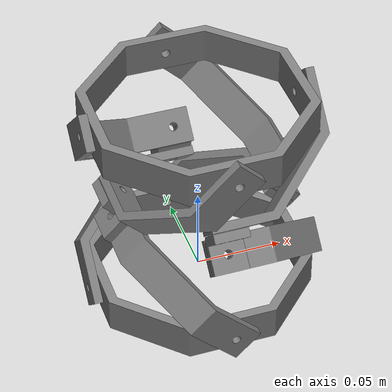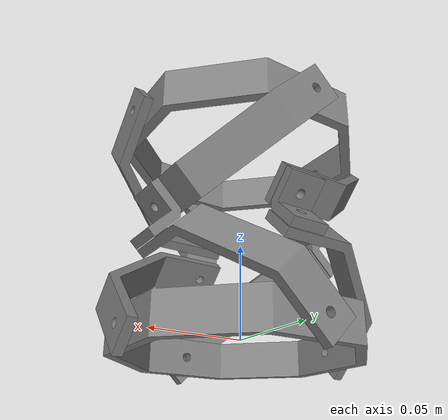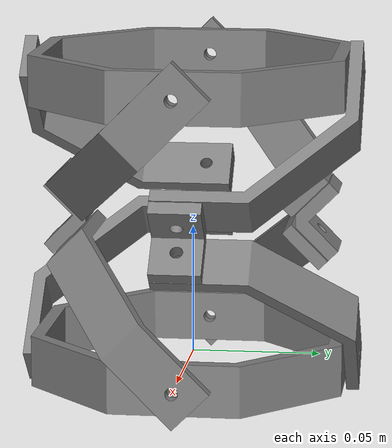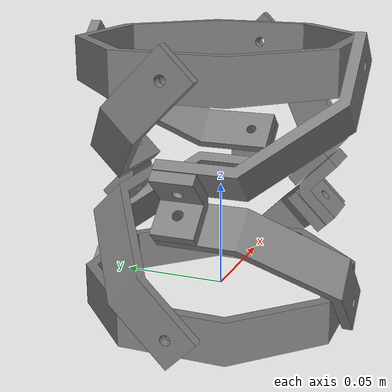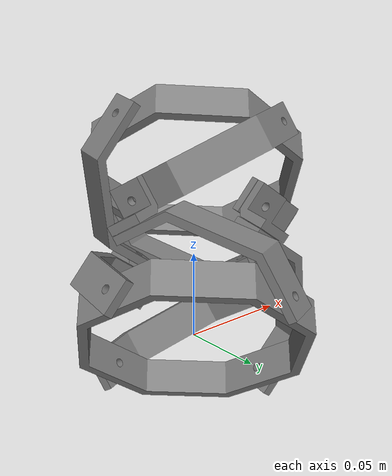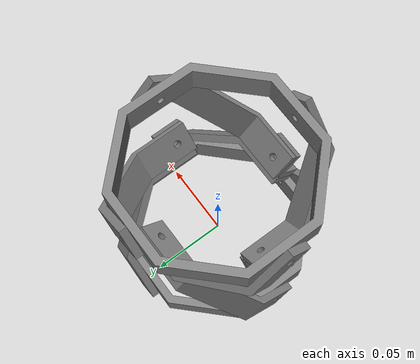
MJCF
<mujoco model="itp2">
  <compiler angle="radian" meshdir="meshes/"/>
  <asset>
    <mesh name="base_link" file="base_link.stl" scale="0.001 0.001 0.001"/>
    <mesh name="l_link_down1" file="l_link_down1.stl" scale="0.001 0.001 0.001"/>
    <mesh name="l_link_down2" file="l_link_down2.stl" scale="0.001 0.001 0.001"/>
    <mesh name="l_link_down3" file="l_link_down3.stl" scale="0.001 0.001 0.001"/>
    <mesh name="l_link_down4" file="l_link_down4.stl" scale="0.001 0.001 0.001"/>
    <mesh name="v_link4" file="v_link4.stl" scale="0.001 0.001 0.001"/>
    <mesh name="v_link1" file="v_link1.stl" scale="0.001 0.001 0.001"/>
    <mesh name="v_link2" file="v_link2.stl" scale="0.001 0.001 0.001"/>
    <mesh name="v_link3" file="v_link3.stl" scale="0.001 0.001 0.001"/>
    <mesh name="l_link_up3" file="l_link_up3.stl" scale="0.001 0.001 0.001"/>
    <mesh name="l_link_up4" file="l_link_up4.stl" scale="0.001 0.001 0.001"/>
    <mesh name="l_link_up1" file="l_link_up1.stl" scale="0.001 0.001 0.001"/>
    <mesh name="l_link_up2" file="l_link_up2.stl" scale="0.001 0.001 0.001"/>
    <mesh name="ring1" file="ring1.stl" scale="0.001 0.001 0.001"/>
  </asset>
  <worldbody>
    <body name="base_link">
      <inertial pos="0 0 0" quat="0.5 0.5 -0.5 0.5" mass="0.312691" diaginertia="0.00110446 0.000562756 0.000562756"/>
      <geom type="mesh" contype="0" conaffinity="0" group="1" density="0" mesh="base_link"/>
      <geom type="mesh" mesh="base_link"/>
      <body name="l_link_down1" pos="0.060355 0 0">
        <inertial pos="-0.0207331 -0.0280169 0.0280169" quat="-1.41001e-07 0.707107 0.5 0.5" mass="0.0964305" diaginertia="0.000102991 9.92561e-05 1.02616e-05"/>
        <joint name="Revolute_33" pos="0 0 0" axis="-1 0 0"/>
        <geom pos="-0.060355 0 0" type="mesh" contype="0" conaffinity="0" group="1" density="0" mesh="l_link_down1"/>
        <geom pos="-0.060355 0 0" type="mesh" mesh="l_link_down1"/>
        <body name="v_link4" pos="-0.060355 0 0.065755">
          <inertial pos="0 -0.0491587 -0.010755" quat="0.707107 0 0 0.707107" mass="0.02882" diaginertia="2.8657e-06 2.33879e-06 1.49746e-06"/>
          <joint name="Revolute_40" pos="0 0 0" axis="0 0.707107 -0.707107"/>
          <geom pos="0 0 -0.065755" type="mesh" contype="0" conaffinity="0" group="1" density="0" mesh="v_link4"/>
          <geom pos="0 0 -0.065755" type="mesh" mesh="v_link4"/>
          <body name="l_link_up1" pos="0 -0.046779 -0.002534">
            <inertial pos="0.0396219 0.0187621 0.0187621" quat="-0.5 0.5 1.41001e-07 0.707107" mass="0.0964305" diaginertia="0.000102991 9.92561e-05 1.02616e-05"/>
            <joint name="Revolute_46" pos="0 0 0" axis="0 -0.707107 -0.707107"/>
            <geom pos="0 0.046779 -0.063221" type="mesh" contype="0" conaffinity="0" group="1" density="0" mesh="l_link_up1"/>
            <geom pos="0 0.046779 -0.063221" type="mesh" mesh="l_link_up1"/>
          </body>
        </body>
      </body>
      <body name="l_link_down2" pos="0 0.060355 0">
        <inertial pos="0.0280169 -0.0207331 0.0280169" quat="0.853553 0.353553 0.353553 -0.146447" mass="0.0964305" diaginertia="0.000102991 9.92561e-05 1.02616e-05"/>
        <joint name="Revolute_38" pos="0 0 0" axis="0 -1 0"/>
        <geom pos="0 -0.060355 0" type="mesh" contype="0" conaffinity="0" group="1" density="0" mesh="l_link_down2"/>
        <geom pos="0 -0.060355 0" type="mesh" mesh="l_link_down2"/>
        <body name="v_link1" pos="0 -0.060355 0.065755">
          <inertial pos="0.0491587 0 -0.010755" mass="0.02882" diaginertia="2.8657e-06 2.33879e-06 1.49746e-06"/>
          <joint name="Revolute_41" pos="0 0 0" axis="-0.707107 0 -0.707107"/>
          <geom pos="0 0 -0.065755" type="mesh" contype="0" conaffinity="0" group="1" density="0" mesh="v_link1"/>
          <geom pos="0 0 -0.065755" type="mesh" mesh="v_link1"/>
          <body name="l_link_up2" pos="0.046779 0 -0.002534">
            <inertial pos="-0.0187621 0.0396219 0.0187621" quat="0.353553 0.853553 -0.146447 0.353553" mass="0.0964305" diaginertia="0.000102991 9.92561e-05 1.02616e-05"/>
            <joint name="Revolute_47" pos="0 0 0" axis="0.707107 0 -0.707107"/>
            <geom pos="-0.046779 0 -0.063221" type="mesh" contype="0" conaffinity="0" group="1" density="0" mesh="l_link_up2"/>
            <geom pos="-0.046779 0 -0.063221" type="mesh" mesh="l_link_up2"/>
            <body name="ring1" pos="0.031003 0.060755 0.124561">
              <inertial pos="-0.077782 -0.060755 -0.077782" quat="0.5 0.5 -0.5 0.5" mass="0.312691" diaginertia="0.00110446 0.000562756 0.000562756"/>
              <joint name="Revolute_48" pos="0 0 0" axis="0 -1 0"/>
              <geom pos="-0.077782 -0.060755 -0.187782" type="mesh" contype="0" conaffinity="0" group="1" density="0" mesh="ring1"/>
              <geom pos="-0.077782 -0.060755 -0.187782" type="mesh" mesh="ring1"/>
            </body>
          </body>
        </body>
      </body>
      <body name="l_link_down3" pos="-0.060355 0 0">
        <inertial pos="0.0207331 0.0280169 0.0280169" quat="-0.5 0.5 1.41001e-07 0.707107" mass="0.0964305" diaginertia="0.000102991 9.92561e-05 1.02616e-05"/>
        <joint name="Revolute_35" pos="0 0 0" axis="1 0 0"/>
        <geom pos="0.060355 0 0" type="mesh" contype="0" conaffinity="0" group="1" density="0" mesh="l_link_down3"/>
        <geom pos="0.060355 0 0" type="mesh" mesh="l_link_down3"/>
        <body name="v_link2" pos="0.060355 0 0.065755">
          <inertial pos="0 0.0491587 -0.010755" quat="0.707107 0 0 0.707107" mass="0.02882" diaginertia="2.8657e-06 2.33879e-06 1.49746e-06"/>
          <joint name="Revolute_42" pos="0 0 0" axis="0 -0.707107 -0.707107"/>
          <geom pos="0 0 -0.065755" type="mesh" contype="0" conaffinity="0" group="1" density="0" mesh="v_link2"/>
          <geom pos="0 0 -0.065755" type="mesh" mesh="v_link2"/>
          <body name="l_link_up3" pos="0 0.046779 -0.002534">
            <inertial pos="-0.0396219 -0.0187621 0.0187621" quat="-1.40718e-07 0.707107 0.5 0.5" mass="0.0964305" diaginertia="0.000102991 9.92561e-05 1.02616e-05"/>
            <joint name="Revolute_44" pos="0 0 0" axis="0 0.707107 -0.707107"/>
            <geom pos="0 -0.046779 -0.063221" type="mesh" contype="0" conaffinity="0" group="1" density="0" mesh="l_link_up3"/>
            <geom pos="0 -0.046779 -0.063221" type="mesh" mesh="l_link_up3"/>
          </body>
        </body>
      </body>
      <body name="l_link_down4" pos="0 -0.060355 0">
        <inertial pos="-0.0280169 0.0207331 0.0280169" quat="0.353553 0.853553 -0.146447 0.353553" mass="0.0964305" diaginertia="0.000102991 9.92561e-05 1.02616e-05"/>
        <joint name="Revolute_36" pos="0 0 0" axis="0 1 0"/>
        <geom pos="0 0.060355 0" type="mesh" contype="0" conaffinity="0" group="1" density="0" mesh="l_link_down4"/>
        <geom pos="0 0.060355 0" type="mesh" mesh="l_link_down4"/>
        <body name="v_link3" pos="0 0.060355 0.065755">
          <inertial pos="-0.0491587 0 -0.010755" mass="0.02882" diaginertia="2.8657e-06 2.33879e-06 1.49746e-06"/>
          <joint name="Revolute_43" pos="0 0 0" axis="0.707107 0 -0.707107"/>
          <geom pos="0 0 -0.065755" type="mesh" contype="0" conaffinity="0" group="1" density="0" mesh="v_link3"/>
          <geom pos="0 0 -0.065755" type="mesh" mesh="v_link3"/>
          <body name="l_link_up4" pos="-0.046779 0 -0.002534">
            <inertial pos="0.0187621 -0.0396219 0.0187621" quat="0.853553 0.353553 0.353553 -0.146447" mass="0.0964305" diaginertia="0.000102991 9.92561e-05 1.02616e-05"/>
            <joint name="Revolute_45" pos="0 0 0" axis="-0.707107 0 -0.707107"/>
            <geom pos="0.046779 0 -0.063221" type="mesh" contype="0" conaffinity="0" group="1" density="0" mesh="l_link_up4"/>
            <geom pos="0.046779 0 -0.063221" type="mesh" mesh="l_link_up4"/>
          </body>
        </body>
      </body>
    </body>
  </worldbody>
  <equality>
     <connect name="kinematic_link1" active="true" body1="l_link_down2" body2="v_link2" anchor="0 0 0" />
     <connect name="kinematic_link2" active="true" body1="l_link_down3" body2="v_link3" anchor="0 0 0" />
     <connect name="kinematic_link3" active="true" body1="l_link_down4" body2="v_link1" anchor="0 0 0" />
     <connect name="kinematic_link4" active="true" body1="l_link_down1" body2="v_link4" anchor="0 0 0" />
     <connect name="connection" active="true" body1="base_link" body2="l_link_down1" anchor="0 0 0" />

    <connect name="kinematic_link5" active="true" body1="v_link1" body2="l_link_up1" anchor="0.0 0 0" />
    <connect name="kinematic_link6" active="true" body1="v_link2" body2="l_link_up2" anchor="0 0 0" />
    <connect name="kinematic_link7" active="true" body1="v_link3" body2="l_link_up3" anchor="0 0 0" />
    <connect name="kinematic_link8" active="true" body1="v_link4" body2="l_link_up4" anchor="0 0 0" />

  </equality>

</mujoco>
